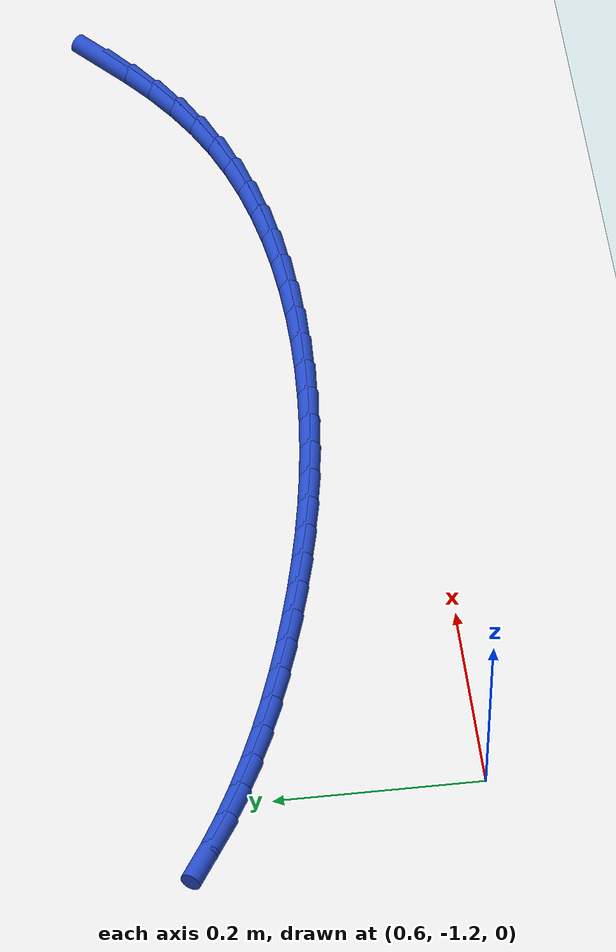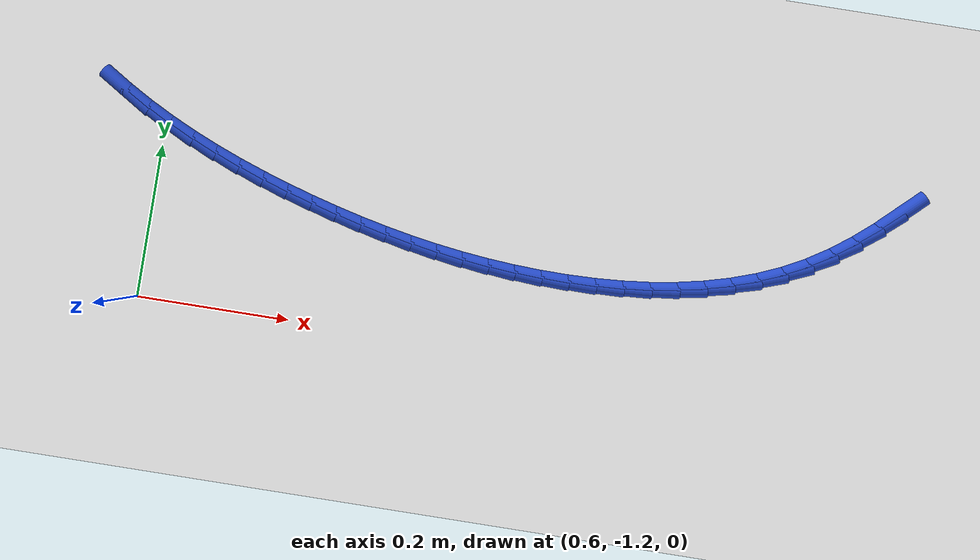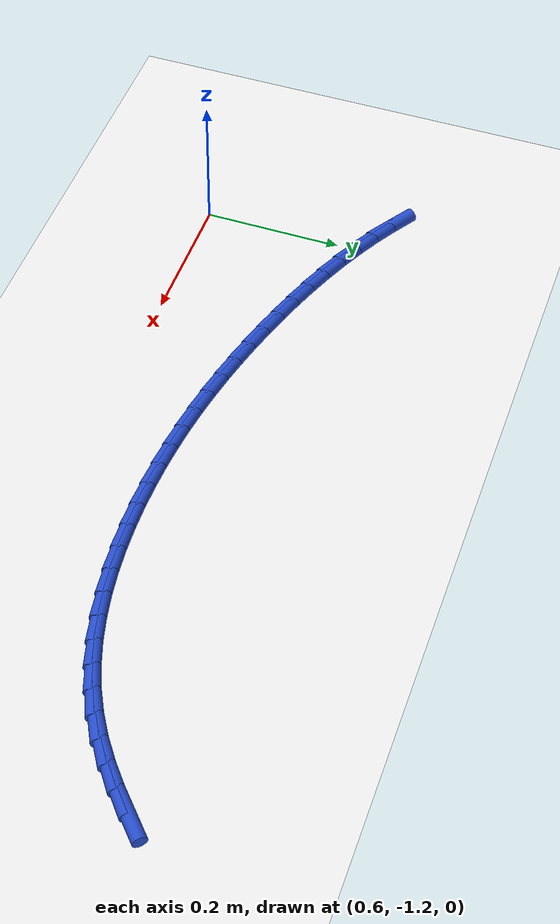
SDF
<sdf version="1.6">
 <world name="default">
  <model name="ground_plane">
   <static>1</static>
   <link name="link">
    <collision name="collision">
     <geometry><plane><normal>0 0 1</normal><size>100 100</size></plane></geometry>
     <surface><friction><ode><mu>100</mu><mu2>50</mu2></ode></friction></surface>
    </collision>
    <visual name="visual">
     <cast_shadows>0</cast_shadows>
     <geometry><plane><normal>0 0 1</normal><size>100 100</size></plane></geometry>
     <material>
      <script><uri>file://media/materials/scripts/gazebo.material</uri><name>Gazebo/WhiteGlow</name></script>
     </material>
    </visual>
   </link>
  </model>
  <model name="line">
   <link name="link_127">
    <pose>1.5675514233266312 -0.9397822506417309 0.01 0 1.57 0.7499640934597721</pose>
    <collision name="collision">
     <geometry><cylinder><radius>0.01</radius><length>0.08</length></cylinder></geometry>
    </collision>
    <visual name="visual">
     <material>
      <script><name>Gazebo/Blue</name><uri>file://media/materials/scripts/gazebo.material</uri></script>
     </material>
     <geometry><cylinder><radius>0.01</radius><length>0.08</length></cylinder></geometry>
    </visual>
   </link>
   <link name="link_128">
    <pose>1.541995208732319 -0.9635886157195435 0.01 0 1.57 0.6975503407643924</pose>
    <collision name="collision">
     <geometry><cylinder><radius>0.01</radius><length>0.08</length></cylinder></geometry>
    </collision>
    <visual name="visual">
     <material>
      <script><name>Gazebo/Blue</name><uri>file://media/materials/scripts/gazebo.material</uri></script>
     </material>
     <geometry><cylinder><radius>0.01</radius><length>0.08</length></cylinder></geometry>
    </visual>
   </link>
   <link name="link_129">
    <pose>1.5154549547060758 -0.9858322527698392 0.01 0 1.57 0.634231847714368</pose>
    <collision name="collision">
     <geometry><cylinder><radius>0.01</radius><length>0.08</length></cylinder></geometry>
    </collision>
    <visual name="visual">
     <material>
      <script><name>Gazebo/Blue</name><uri>file://media/materials/scripts/gazebo.material</uri></script>
     </material>
     <geometry><cylinder><radius>0.01</radius><length>0.08</length></cylinder></geometry>
    </visual>
   </link>
   <link name="link_130">
    <pose>1.487747424134893 -1.0062143656055949 0.01 0 1.57 0.5600954769326453</pose>
    <collision name="collision">
     <geometry><cylinder><radius>0.01</radius><length>0.08</length></cylinder></geometry>
    </collision>
    <visual name="visual">
     <material>
      <script><name>Gazebo/Blue</name><uri>file://media/materials/scripts/gazebo.material</uri></script>
     </material>
     <geometry><cylinder><radius>0.01</radius><length>0.08</length></cylinder></geometry>
    </visual>
   </link>
   <link name="link_131">
    <pose>1.4586893799057619 -1.024436158039788 0.01 0 1.57 0.4780468102751865</pose>
    <collision name="collision">
     <geometry><cylinder><radius>0.01</radius><length>0.08</length></cylinder></geometry>
    </collision>
    <visual name="visual">
     <material>
      <script><name>Gazebo/Blue</name><uri>file://media/materials/scripts/gazebo.material</uri></script>
     </material>
     <geometry><cylinder><radius>0.01</radius><length>0.08</length></cylinder></geometry>
    </visual>
   </link>
   <link name="link_132">
    <pose>1.428150156099257 -1.0402594701695285 0.01 0 1.57 0.3996851749926626</pose>
    <collision name="collision">
     <geometry><cylinder><radius>0.01</radius><length>0.08</length></cylinder></geometry>
    </collision>
    <visual name="visual">
     <material>
      <script><name>Gazebo/Blue</name><uri>file://media/materials/scripts/gazebo.material</uri></script>
     </material>
     <geometry><cylinder><radius>0.01</radius><length>0.08</length></cylinder></geometry>
    </visual>
   </link>
   <link name="link_133">
    <pose>1.3962495270158037 -1.053735003030682 0.01 0 1.57 0.3283168090914448</pose>
    <collision name="collision">
     <geometry><cylinder><radius>0.01</radius><length>0.08</length></cylinder></geometry>
    </collision>
    <visual name="visual">
     <material>
      <script><name>Gazebo/Blue</name><uri>file://media/materials/scripts/gazebo.material</uri></script>
     </material>
     <geometry><cylinder><radius>0.01</radius><length>0.08</length></cylinder></geometry>
    </visual>
   </link>
   <link name="link_134">
    <pose>1.3631817619632285 -1.064999381149287 0.01 0 1.57 0.2636815769753867</pose>
    <collision name="collision">
     <geometry><cylinder><radius>0.01</radius><length>0.08</length></cylinder></geometry>
    </collision>
    <visual name="visual">
     <material>
      <script><name>Gazebo/Blue</name><uri>file://media/materials/scripts/gazebo.material</uri></script>
     </material>
     <geometry><cylinder><radius>0.01</radius><length>0.08</length></cylinder></geometry>
    </visual>
   </link>
   <link name="link_135">
    <pose>1.329141142614203 -1.0741892433131541 0.01 0 1.57 0.20533997136711754</pose>
    <collision name="collision">
     <geometry><cylinder><radius>0.01</radius><length>0.08</length></cylinder></geometry>
    </collision>
    <visual name="visual">
     <material>
      <script><name>Gazebo/Blue</name><uri>file://media/materials/scripts/gazebo.material</uri></script>
     </material>
     <geometry><cylinder><radius>0.01</radius><length>0.08</length></cylinder></geometry>
    </visual>
   </link>
   <link name="link_136">
    <pose>1.2943219506413997 -1.0814412283100934 0.01 0 1.57 0.15276126842511592</pose>
    <collision name="collision">
     <geometry><cylinder><radius>0.01</radius><length>0.08</length></cylinder></geometry>
    </collision>
    <visual name="visual">
     <material>
      <script><name>Gazebo/Blue</name><uri>file://media/materials/scripts/gazebo.material</uri></script>
     </material>
     <geometry><cylinder><radius>0.01</radius><length>0.08</length></cylinder></geometry>
    </visual>
   </link>
   <link name="link_137">
    <pose>1.25891846771749 -1.0868919749279147 0.01 0 1.57 0.1053856419335065</pose>
    <collision name="collision">
     <geometry><cylinder><radius>0.01</radius><length>0.08</length></cylinder></geometry>
    </collision>
    <visual name="visual">
     <material>
      <script><name>Gazebo/Blue</name><uri>file://media/materials/scripts/gazebo.material</uri></script>
     </material>
     <geometry><cylinder><radius>0.01</radius><length>0.08</length></cylinder></geometry>
    </visual>
   </link>
   <link name="link_138">
    <pose>1.2231249755151463 -1.0906781219544281 0.01 0 1.57 0.06266403273117978</pose>
    <collision name="collision">
     <geometry><cylinder><radius>0.01</radius><length>0.08</length></cylinder></geometry>
    </collision>
    <visual name="visual">
     <material>
      <script><name>Gazebo/Blue</name><uri>file://media/materials/scripts/gazebo.material</uri></script>
     </material>
     <geometry><cylinder><radius>0.01</radius><length>0.08</length></cylinder></geometry>
    </visual>
   </link>
   <link name="link_139">
    <pose>1.1871357557070414 -1.0929363081774448 0.01 0 1.57 0.024081150421337575</pose>
    <collision name="collision">
     <geometry><cylinder><radius>0.01</radius><length>0.08</length></cylinder></geometry>
    </collision>
    <visual name="visual">
     <material>
      <script><name>Gazebo/Blue</name><uri>file://media/materials/scripts/gazebo.material</uri></script>
     </material>
     <geometry><cylinder><radius>0.01</radius><length>0.08</length></cylinder></geometry>
    </visual>
   </link>
   <link name="link_140">
    <pose>1.1511450899658457 -1.093803172384774 0.01 0 1.57 -0.010881105689491428</pose>
    <collision name="collision">
     <geometry><cylinder><radius>0.01</radius><length>0.08</length></cylinder></geometry>
    </collision>
    <visual name="visual">
     <material>
      <script><name>Gazebo/Blue</name><uri>file://media/materials/scripts/gazebo.material</uri></script>
     </material>
     <geometry><cylinder><radius>0.01</radius><length>0.08</length></cylinder></geometry>
    </visual>
   </link>
   <link name="link_141">
    <pose>1.1153432784652302 -1.0934135937146676 0.01 0 1.57 -0.04373831184288357</pose>
    <collision name="collision">
     <geometry><cylinder><radius>0.01</radius><length>0.08</length></cylinder></geometry>
    </collision>
    <visual name="visual">
     <material>
      <script><name>Gazebo/Blue</name><uri>file://media/materials/scripts/gazebo.material</uri></script>
     </material>
     <geometry><cylinder><radius>0.01</radius><length>0.08</length></cylinder></geometry>
    </visual>
   </link>
   <link name="link_142">
    <pose>1.0798222424335224 -1.0918589720861944 0.01 0 1.57 -0.07569717494320438</pose>
    <collision name="collision">
     <geometry><cylinder><radius>0.01</radius><length>0.08</length></cylinder></geometry>
    </collision>
    <visual name="visual">
     <material>
      <script><name>Gazebo/Blue</name><uri>file://media/materials/scripts/gazebo.material</uri></script>
     </material>
     <geometry><cylinder><radius>0.01</radius><length>0.08</length></cylinder></geometry>
    </visual>
   </link>
   <link name="link_143">
    <pose>1.044571588491549 -1.0891854888075756 0.01 0 1.57 -0.1067006557199477</pose>
    <collision name="collision">
     <geometry><cylinder><radius>0.01</radius><length>0.08</length></cylinder></geometry>
    </collision>
    <visual name="visual">
     <material>
      <script><name>Gazebo/Blue</name><uri>file://media/materials/scripts/gazebo.material</uri></script>
     </material>
     <geometry><cylinder><radius>0.01</radius><length>0.08</length></cylinder></geometry>
    </visual>
   </link>
   <link name="link_144">
    <pose>1.0095761542490163 -1.0854372174913351 0.01 0 1.57 -0.13664659102731375</pose>
    <collision name="collision">
     <geometry><cylinder><radius>0.01</radius><length>0.08</length></cylinder></geometry>
    </collision>
    <visual name="visual">
     <material>
      <script><name>Gazebo/Blue</name><uri>file://media/materials/scripts/gazebo.material</uri></script>
     </material>
     <geometry><cylinder><radius>0.01</radius><length>0.08</length></cylinder></geometry>
    </visual>
   </link>
   <link name="link_145">
    <pose>0.9748207773156337 -1.0806582317499989 0.01 0 1.57 -0.1654458257933249</pose>
    <collision name="collision">
     <geometry><cylinder><radius>0.01</radius><length>0.08</length></cylinder></geometry>
    </collision>
    <visual name="visual">
     <material>
      <script><name>Gazebo/Blue</name><uri>file://media/materials/scripts/gazebo.material</uri></script>
     </material>
     <geometry><cylinder><radius>0.01</radius><length>0.08</length></cylinder></geometry>
    </visual>
   </link>
   <link name="link_146">
    <pose>0.9402902953011064 -1.0748926051960905 0.01 0 1.57 -0.19302246099759163</pose>
    <collision name="collision">
     <geometry><cylinder><radius>0.01</radius><length>0.08</length></cylinder></geometry>
    </collision>
    <visual name="visual">
     <material>
      <script><name>Gazebo/Blue</name><uri>file://media/materials/scripts/gazebo.material</uri></script>
     </material>
     <geometry><cylinder><radius>0.01</radius><length>0.08</length></cylinder></geometry>
    </visual>
   </link>
   <link name="link_147">
    <pose>0.9059695458151431 -1.0681844114421353 0.01 0 1.57 -0.21931367365761079</pose>
    <collision name="collision">
     <geometry><cylinder><radius>0.01</radius><length>0.08</length></cylinder></geometry>
    </collision>
    <visual name="visual">
     <material>
      <script><name>Gazebo/Blue</name><uri>file://media/materials/scripts/gazebo.material</uri></script>
     </material>
     <geometry><cylinder><radius>0.01</radius><length>0.08</length></cylinder></geometry>
    </visual>
   </link>
   <link name="link_148">
    <pose>0.8718433664674508 -1.0605777241006569 0.01 0 1.57 -0.24426917544455676</pose>
    <collision name="collision">
     <geometry><cylinder><radius>0.01</radius><length>0.08</length></cylinder></geometry>
    </collision>
    <visual name="visual">
     <material>
      <script><name>Gazebo/Blue</name><uri>file://media/materials/scripts/gazebo.material</uri></script>
     </material>
     <geometry><cylinder><radius>0.01</radius><length>0.08</length></cylinder></geometry>
    </visual>
   </link>
   <link name="link_149">
    <pose>0.8378965948677368 -1.0521166167841804 0.01 0 1.57 -0.26785038614650664</pose>
    <collision name="collision">
     <geometry><cylinder><radius>0.01</radius><length>0.08</length></cylinder></geometry>
    </collision>
    <visual name="visual">
     <material>
      <script><name>Gazebo/Blue</name><uri>file://media/materials/scripts/gazebo.material</uri></script>
     </material>
     <geometry><cylinder><radius>0.01</radius><length>0.08</length></cylinder></geometry>
    </visual>
   </link>
   <link name="link_150">
    <pose>0.8041140686257093 -1.0428451631052307 0.01 0 1.57 -0.29021406402609623</pose>
    <collision name="collision">
     <geometry><cylinder><radius>0.01</radius><length>0.08</length></cylinder></geometry>
    </collision>
    <visual name="visual">
     <material>
      <script><name>Gazebo/Blue</name><uri>file://media/materials/scripts/gazebo.material</uri></script>
     </material>
     <geometry><cylinder><radius>0.01</radius><length>0.08</length></cylinder></geometry>
    </visual>
   </link>
   <link name="link_151">
    <pose>0.7704850463039582 -1.032801992528422 0.01 0 1.57 -0.3137494851221017</pose>
    <collision name="collision">
     <geometry><cylinder><radius>0.01</radius><length>0.08</length></cylinder></geometry>
    </collision>
    <visual name="visual">
     <material>
      <script><name>Gazebo/Blue</name><uri>file://media/materials/scripts/gazebo.material</uri></script>
     </material>
     <geometry><cylinder><radius>0.01</radius><length>0.08</length></cylinder></geometry>
    </visual>
   </link>
   <link name="link_152">
    <pose>0.737055935508197 -1.0219553587754344 0.01 0 1.57 -0.34018657630806065</pose>
    <collision name="collision">
     <geometry><cylinder><radius>0.01</radius><length>0.08</length></cylinder></geometry>
    </collision>
    <visual name="visual">
     <material>
      <script><name>Gazebo/Blue</name><uri>file://media/materials/scripts/gazebo.material</uri></script>
     </material>
     <geometry><cylinder><radius>0.01</radius><length>0.08</length></cylinder></geometry>
    </visual>
   </link>
   <link name="link_153">
    <pose>0.703912944925478 -1.0102245028370904 0.01 0 1.57 -0.36964487388234984</pose>
    <collision name="collision">
     <geometry><cylinder><radius>0.01</radius><length>0.08</length></cylinder></geometry>
    </collision>
    <visual name="visual">
     <material>
      <script><name>Gazebo/Blue</name><uri>file://media/materials/scripts/gazebo.material</uri></script>
     </material>
     <geometry><cylinder><radius>0.01</radius><length>0.08</length></cylinder></geometry>
    </visual>
   </link>
   <link name="link_154">
    <pose>0.6711430916262363 -0.9975276702268142 0.01 0 1.57 -0.40220986972888106</pose>
    <collision name="collision">
     <geometry><cylinder><radius>0.01</radius><length>0.08</length></cylinder></geometry>
    </collision>
    <visual name="visual">
     <material>
      <script><name>Gazebo/Blue</name><uri>file://media/materials/scripts/gazebo.material</uri></script>
     </material>
     <geometry><cylinder><radius>0.01</radius><length>0.08</length></cylinder></geometry>
    </visual>
   </link>
   <link name="link_155">
    <pose>0.6388333926809062 -0.9837831064580286 0.01 0 1.57 -0.4379587243134666</pose>
    <collision name="collision">
     <geometry><cylinder><radius>0.01</radius><length>0.08</length></cylinder></geometry>
    </collision>
    <visual name="visual">
     <material>
      <script><name>Gazebo/Blue</name><uri>file://media/materials/scripts/gazebo.material</uri></script>
     </material>
     <geometry><cylinder><radius>0.01</radius><length>0.08</length></cylinder></geometry>
    </visual>
   </link>
   <link name="link_156">
    <pose>0.6070708651599214 -0.9689090570441558 0.01 0 1.57 -0.4769505501314139</pose>
    <collision name="collision">
     <geometry><cylinder><radius>0.01</radius><length>0.08</length></cylinder></geometry>
    </collision>
    <visual name="visual">
     <material>
      <script><name>Gazebo/Blue</name><uri>file://media/materials/scripts/gazebo.material</uri></script>
     </material>
     <geometry><cylinder><radius>0.01</radius><length>0.08</length></cylinder></geometry>
    </visual>
   </link>
   <link name="link_157">
    <pose>0.5759425261337162 -0.9528237674986193 0.01 0 1.57 -0.5186377841909409</pose>
    <collision name="collision">
     <geometry><cylinder><radius>0.01</radius><length>0.08</length></cylinder></geometry>
    </collision>
    <visual name="visual">
     <material>
      <script><name>Gazebo/Blue</name><uri>file://media/materials/scripts/gazebo.material</uri></script>
     </material>
     <geometry><cylinder><radius>0.01</radius><length>0.08</length></cylinder></geometry>
    </visual>
   </link>
   <link name="link_158">
    <pose>0.5455248316485541 -0.9354627329575659 0.01 0 1.57 -0.5597855384537515</pose>
    <collision name="collision">
     <geometry><cylinder><radius>0.01</radius><length>0.08</length></cylinder></geometry>
    </collision>
    <visual name="visual">
     <material>
      <script><name>Gazebo/Blue</name><uri>file://media/materials/scripts/gazebo.material</uri></script>
     </material>
     <geometry><cylinder><radius>0.01</radius><length>0.08</length></cylinder></geometry>
    </visual>
   </link>
  </model>
 </world>
</sdf>
